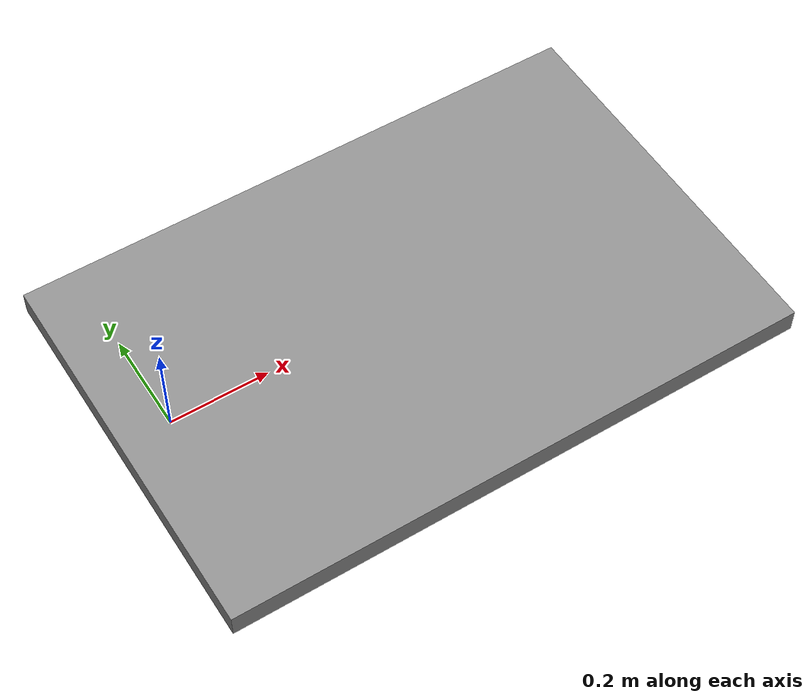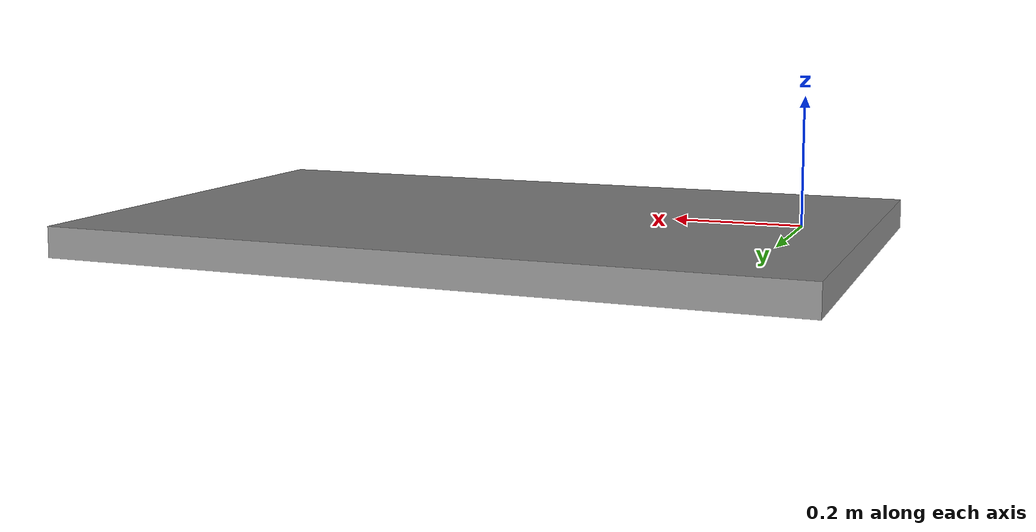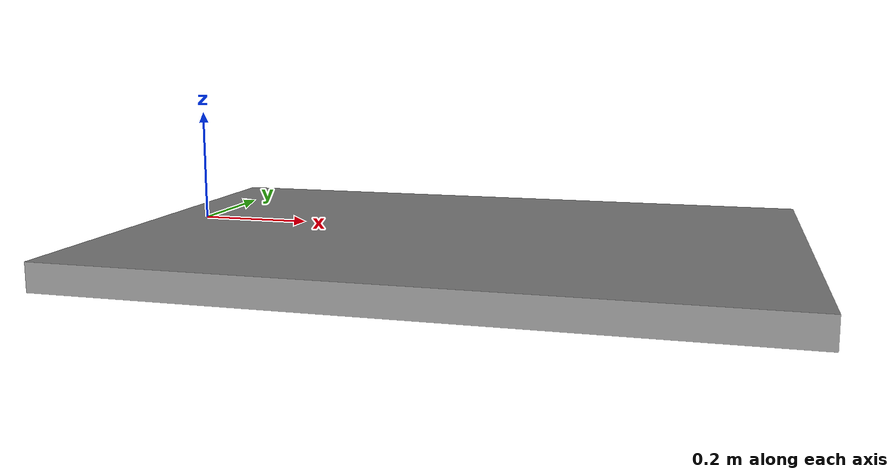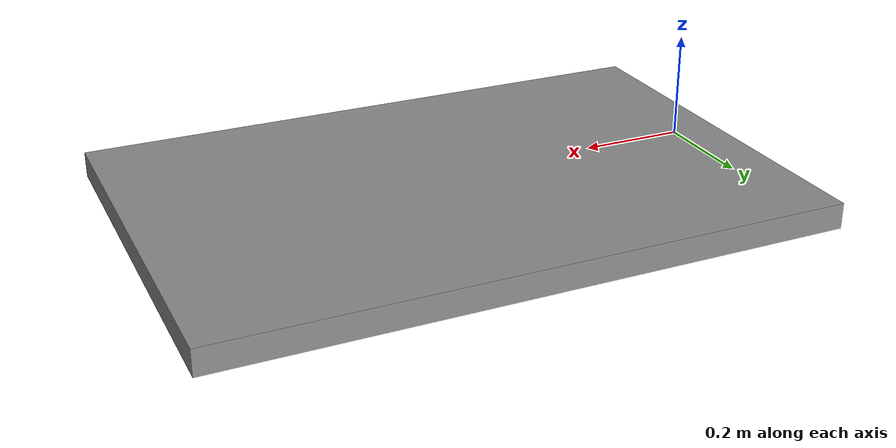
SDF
<?xml version="1.0"?>
<sdf version="1.6">
  <model name="work_table">
    <static>true</static>
    <pose>0.50 0.00 -0.03 0 0 0</pose>

    <link name="table_link">

      <!-- Physics collision geometry -->
      <collision name="table_collision">
        <geometry>
          <box>
            <size>1.20 0.80 0.05</size>
          </box>
        </geometry>
        <surface>
          <friction>
            <ode>
              <mu>0.8</mu>
              <mu2>0.8</mu2>
            </ode>
          </friction>
        </surface>
      </collision>

      <!-- Visual geometry (gray table surface) -->
      <visual name="table_visual">
        <geometry>
          <box>
            <size>1.20 0.80 0.05</size>
          </box>
        </geometry>
        <material>
          <ambient>0.55 0.55 0.55 1.0</ambient>
          <diffuse>0.55 0.55 0.55 1.0</diffuse>
          <specular>0.1 0.1 0.1 1.0</specular>
        </material>
      </visual>

    </link>
  </model>
</sdf>
